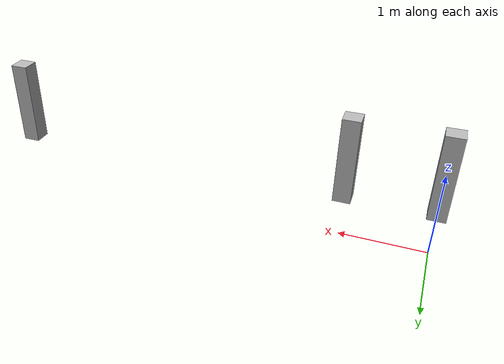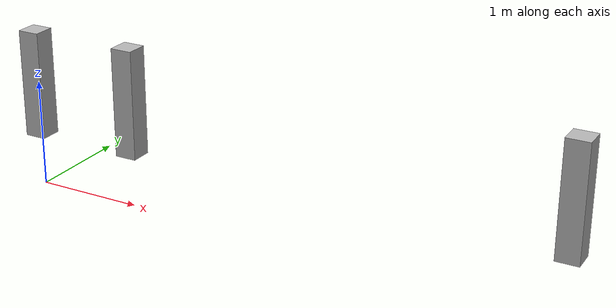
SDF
<?xml version="1.0" ?>
<sdf version="1.6">
  <world name="default">
    <gravity>0 0 0</gravity>
    <physics type="dart">
      <max_step_size>0.001</max_step_size>
    </physics>

    <model name="mimic_model">
      <pose>0 0 0 0 0 0</pose>

      <link name="base">
        <pose>0 0 0 0 0 0</pose>
        <inertial>
          <mass>10.0</mass>
          <inertia>
            <ixx>1.0</ixx>
            <iyy>1.0</iyy>
            <izz>1.0</izz>
            <ixy>0.0</ixy>
            <ixz>0.0</ixz>
            <iyz>0.0</iyz>
          </inertia>
        </inertial>
      </link>

      <link name="reference_link">
        <pose>0 0 1 0 0 0</pose>
        <inertial>
          <mass>1.0</mass>
          <inertia>
            <ixx>0.1</ixx>
            <iyy>0.1</iyy>
            <izz>0.1</izz>
            <ixy>0.0</ixy>
            <ixz>0.0</ixz>
            <iyz>0.0</iyz>
          </inertia>
        </inertial>
        <visual name="ref_vis">
          <geometry>
            <box>
              <size>0.2 0.2 1.0</size>
            </box>
          </geometry>
        </visual>
      </link>

      <link name="follower_link">
        <pose>1 0 1 0 0 0</pose>
        <inertial>
          <mass>1.0</mass>
          <inertia>
            <ixx>0.1</ixx>
            <iyy>0.1</iyy>
            <izz>0.1</izz>
            <ixy>0.0</ixy>
            <ixz>0.0</ixz>
            <iyz>0.0</iyz>
          </inertia>
        </inertial>
        <visual name="follow_vis">
          <geometry>
            <box>
              <size>0.2 0.2 1.0</size>
            </box>
          </geometry>
        </visual>
      </link>

      <joint name="reference_joint" type="revolute">
        <parent>base</parent>
        <child>reference_link</child>
        <axis>
          <xyz>1 0 0</xyz>
        </axis>
      </joint>

      <joint name="follower_joint" type="revolute">
        <parent>base</parent>
        <child>follower_link</child>
        <axis>
          <xyz>1 0 0</xyz>
          <mimic joint="reference_joint" axis="axis">
            <multiplier>2.0</multiplier>
            <offset>0.25</offset>
          </mimic>
        </axis>
      </joint>
    </model>

    <model name="plain_model">
      <pose>5 0 0 0 0 0</pose>

      <link name="base">
        <pose>0 0 0 0 0 0</pose>
        <inertial>
          <mass>10.0</mass>
          <inertia>
            <ixx>1.0</ixx>
            <iyy>1.0</iyy>
            <izz>1.0</izz>
            <ixy>0.0</ixy>
            <ixz>0.0</ixz>
            <iyz>0.0</iyz>
          </inertia>
        </inertial>
      </link>

      <link name="plain_link">
        <pose>0 0 1 0 0 0</pose>
        <inertial>
          <mass>1.0</mass>
          <inertia>
            <ixx>0.1</ixx>
            <iyy>0.1</iyy>
            <izz>0.1</izz>
            <ixy>0.0</ixy>
            <ixz>0.0</ixz>
            <iyz>0.0</iyz>
          </inertia>
        </inertial>
        <visual name="plain_vis">
          <geometry>
            <box>
              <size>0.2 0.2 1.0</size>
            </box>
          </geometry>
        </visual>
      </link>

      <joint name="plain_joint" type="revolute">
        <parent>base</parent>
        <child>plain_link</child>
        <axis>
          <xyz>1 0 0</xyz>
        </axis>
      </joint>
    </model>
  </world>
</sdf>
